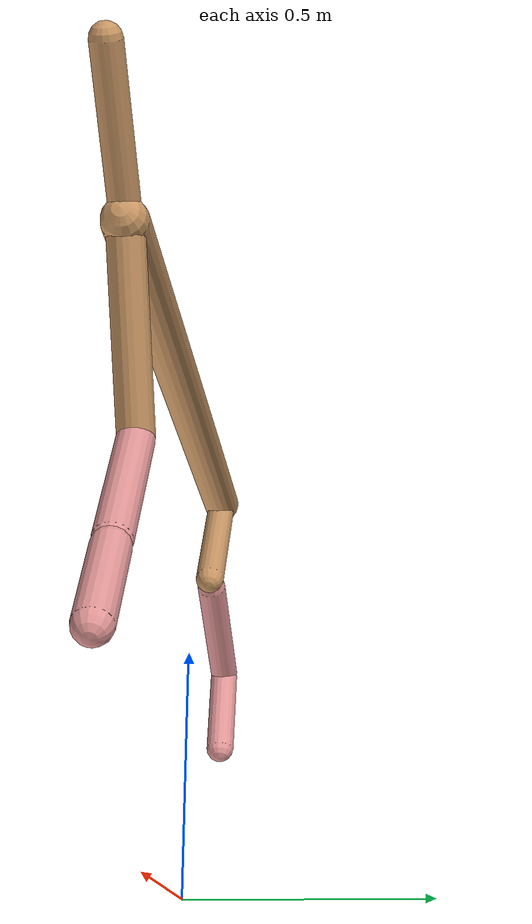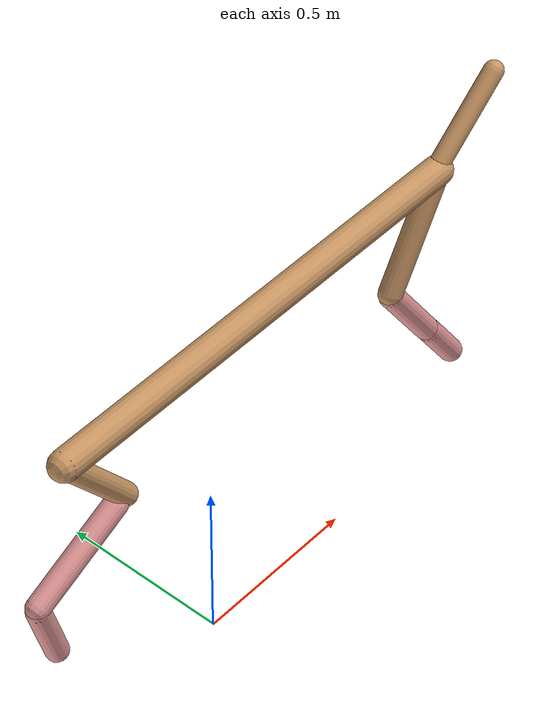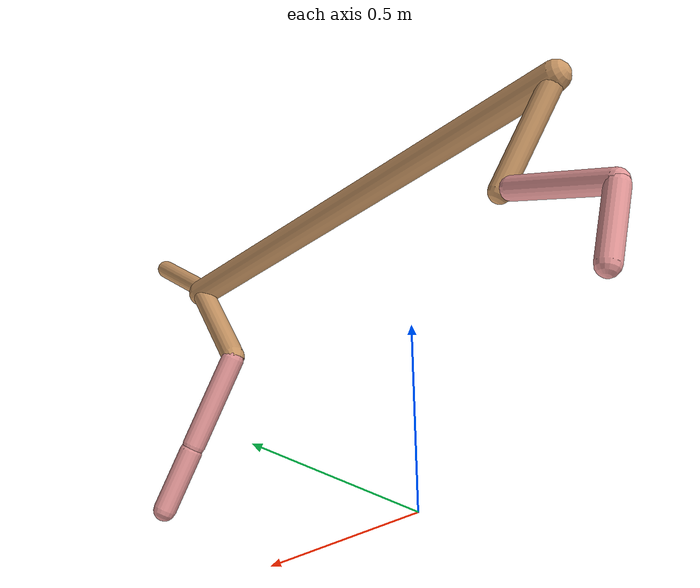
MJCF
<mujoco model="cheetah">
  <compiler angle="radian" coordinate="local" inertiafromgeom="true" settotalmass="14" />
  <default>
    <joint armature=".1" damping=".01" limited="true" solimplimit="0 .8 .03" solreflimit=".02 1" stiffness="8" />
    <geom conaffinity="0" condim="3" contype="1" friction="0.8 .1 .1" rgba="0.8 0.6 .4 1" solimp="0.0 0.8 0.01" solref="0.02 1" />
    <motor ctrllimited="true" ctrlrange="-1 1" />
  </default>
  <size nstack="300000" nuser_geom="1" />
  <option gravity="0 0 -9.81" timestep="0.01" />
  <worldbody>
    <body name="torso" pos="0.0 0.0 1.0090410398361653">
      <joint armature="0" axis="1 0 0" damping="0" limited="false" name="ignorex" pos="0 0 0" stiffness="0" type="slide" />
      <joint armature="0" axis="0 0 1" damping="0" limited="false" name="ignorez" pos="0 0 0" stiffness="0" type="slide" />
      <joint armature="0" axis="0 1 0" damping="0" limited="false" name="ignorey" pos="0 0 0" stiffness="0" type="hinge" />
      <geom fromto="-0.5 0.0 0.0 0.8838987373580927 0.0 0.0" name="torso" size="0.04170370317354819" type="capsule" />
      <geom axisangle="0 1 0 .87" name="head" pos="0.9838987373580926 0.0 0.1" size="0.02824506905978741 0.15" type="capsule" />

      <body name="bthigh" pos="-.5 0 0">
        <joint axis="0 1 0" damping="6" name="bthigh" pos="0 0 0" range="-.52 1.05" stiffness="240" type="hinge" />
        <geom axisangle="0 1 0 -3.8" name="bthigh" pos="0.10390065663688475 0.0 -0.13507085362795015" size="0.0322 0.15139755255663975" type="capsule" />
        <body name="bshin" pos="0.1678013132737695 0.0 -0.2601417072559003">
          <joint axis="0 1 0" damping="4.5" name="bshin" pos="0 0 0" range="-.785 .785" stiffness="180" type="hinge" />
          <geom axisangle="0 1 0 -2.03" name="bshin" pos="-0.14591946030604447 0.0 -0.07295973015302223" rgba="0.9 0.6 0.6 1" size="0.0322 0.15661815781721355" type="capsule" />
          <body name="bfoot" pos="-0.29183892061208894 0.0 -0.14591946030604447">
            <joint axis="0 1 0" damping="3" name="bfoot" pos="0 0 0" range="-.4 .785" stiffness="120" type="hinge" />
            <geom axisangle="0 1 0 -.27" name="bfoot" pos="0.031225424894077473 0.0 -0.10096220715751716" rgba="0.9 0.6 0.6 1" size="0.0322 0.09814737889878716" type="capsule" />
            <inertial mass="10" />
          </body>
        </body>
      </body>
      <body name="fthigh" pos="0.8838987373580927 0.0 0.0">
        <joint axis="0 1 0" damping="4.5" name="fthigh" pos="0 0 0" range="-1.5 0.8" stiffness="180" type="hinge" />
        <geom axisangle="0 1 0 .52" name="fthigh" pos="-0.09166353327853563 0.0 -0.15713748562034677" size="0.033679268457032556 0.17599420324080545" type="capsule" />
        <body name="fshin" pos="-0.18332706655707126 0.0 -0.31427497124069353">
          <joint axis="0 1 0" damping="3" name="fshin" pos="0 0 0" range="-1.2 1.1" stiffness="120" type="hinge" />
          <geom axisangle="0 1 0 -.6" name="fshin" pos="0.08506245252602215 0.0 -0.11777878042064605" rgba="0.9 0.6 0.6 1" size="0.033679268457032556 0.14026605671823592" type="capsule" />
          <body name="ffoot" pos="0.1701249050520443 0.0 -0.2355575608412921">
            <joint axis="0 1 0" damping="1.5" name="ffoot" pos="0 0 0" range="-3.1 -0.3" stiffness="60" type="hinge" />
            <geom axisangle="0 1 0 -.6" name="ffoot" pos="0.05723654830786366 0.0 -0.08903463070112126" rgba="0.9 0.6 0.6 1" size="0.033679268457032556 0.09262852802147656" type="capsule" />
            <inertial mass="10" />
          </body>
        </body>
      </body>
    </body>
  </worldbody>
  <actuator>
    <motor gear="120" joint="bthigh" name="bthigh" />
    <motor gear="90" joint="bshin" name="bshin" />
    <motor gear="60" joint="bfoot" name="bfoot" />
    <motor gear="120" joint="fthigh" name="fthigh" />
    <motor gear="60" joint="fshin" name="fshin" />
    <motor gear="30" joint="ffoot" name="ffoot" />
  </actuator>
</mujoco>
